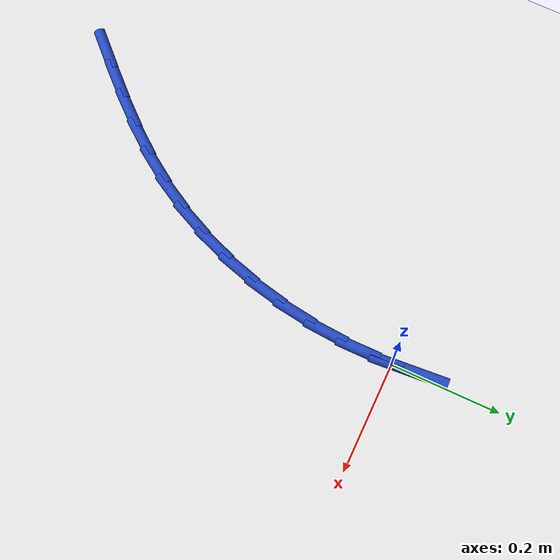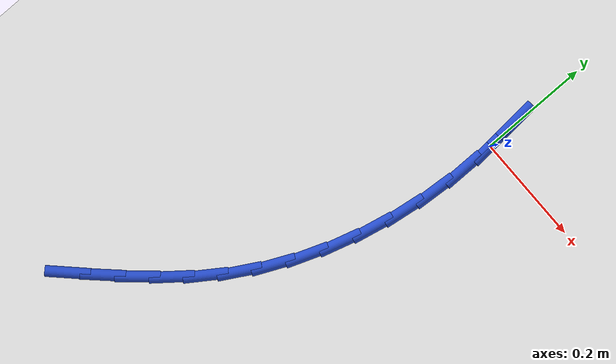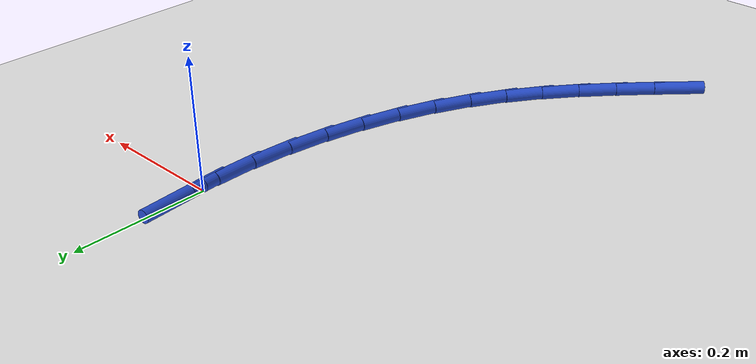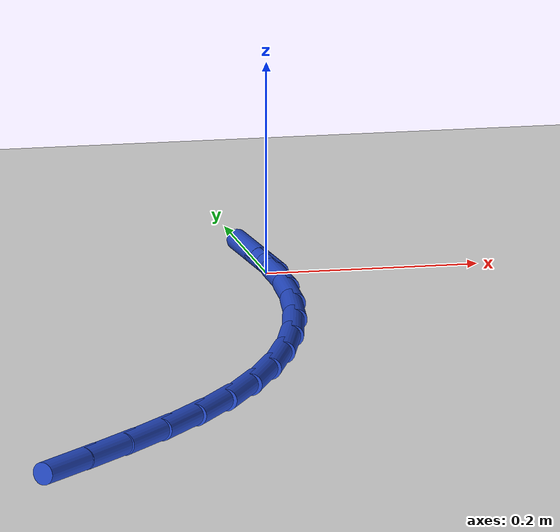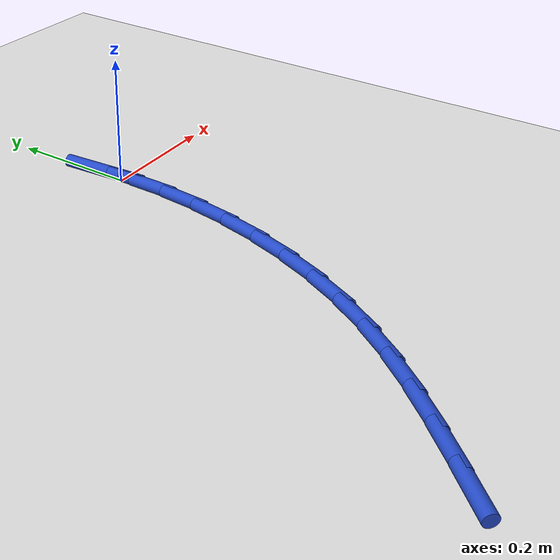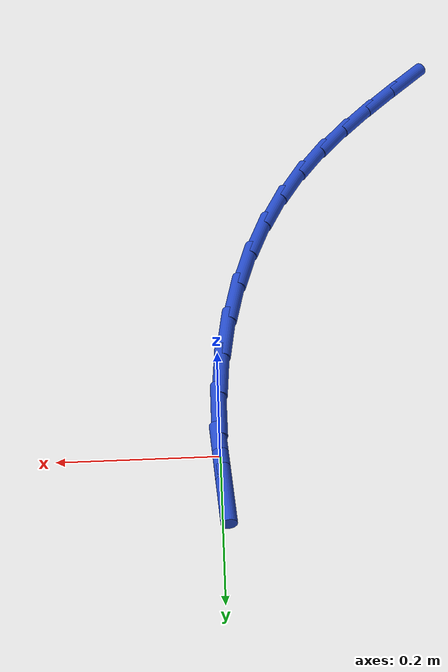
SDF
<sdf version="1.6">
 <world name="default">
  <model name="ground_plane">
   <static>1</static>
   <link name="link">
    <collision name="collision">
     <geometry><plane><normal>0 0 1</normal><size>100 100</size></plane></geometry>
     <surface><friction><ode><mu>100</mu><mu2>50</mu2></ode></friction></surface>
    </collision>
    <visual name="visual">
     <cast_shadows>0</cast_shadows>
     <geometry><plane><normal>0 0 1</normal><size>100 100</size></plane></geometry>
     <material>
      <script><uri>file://media/materials/scripts/gazebo.material</uri><name>Gazebo/WhiteGlow</name></script>
     </material>
    </visual>
   </link>
  </model>
  <model name="line">
   <link name="link_0">
    <pose>-2.0816681711721685e-17 -6.938893903907228e-17 0.01 0 1.57 -1.4980942625534617</pose>
    <collision name="collision">
     <geometry><cylinder><radius>0.01</radius><length>0.08</length></cylinder></geometry>
    </collision>
    <visual name="visual">
     <material>
      <script><name>Gazebo/Blue</name><uri>file://media/materials/scripts/gazebo.material</uri></script>
     </material>
     <geometry><cylinder><radius>0.01</radius><length>0.08</length></cylinder></geometry>
    </visual>
   </link>
   <link name="link_117">
    <pose>-0.31306537928344974 -0.7002621055880182 0.01 0 1.57 0.7923701528504938</pose>
    <collision name="collision">
     <geometry><cylinder><radius>0.01</radius><length>0.08</length></cylinder></geometry>
    </collision>
    <visual name="visual">
     <material>
      <script><name>Gazebo/Blue</name><uri>file://media/materials/scripts/gazebo.material</uri></script>
     </material>
     <geometry><cylinder><radius>0.01</radius><length>0.08</length></cylinder></geometry>
    </visual>
   </link>
   <link name="link_118">
    <pose>-0.270023744569497 -0.6566160755970584 0.01 0 1.57 0.8124459100381214</pose>
    <collision name="collision">
     <geometry><cylinder><radius>0.01</radius><length>0.08</length></cylinder></geometry>
    </collision>
    <visual name="visual">
     <material>
      <script><name>Gazebo/Blue</name><uri>file://media/materials/scripts/gazebo.material</uri></script>
     </material>
     <geometry><cylinder><radius>0.01</radius><length>0.08</length></cylinder></geometry>
    </visual>
   </link>
   <link name="link_119">
    <pose>-0.22859808628022263 -0.6128866010121463 0.01 0 1.57 0.8494992442936784</pose>
    <collision name="collision">
     <geometry><cylinder><radius>0.01</radius><length>0.08</length></cylinder></geometry>
    </collision>
    <visual name="visual">
     <material>
      <script><name>Gazebo/Blue</name><uri>file://media/materials/scripts/gazebo.material</uri></script>
     </material>
     <geometry><cylinder><radius>0.01</radius><length>0.08</length></cylinder></geometry>
    </visual>
   </link>
   <link name="link_120">
    <pose>-0.18934467012504438 -0.5682482547174895 0.01 0 1.57 0.9036380978594104</pose>
    <collision name="collision">
     <geometry><cylinder><radius>0.01</radius><length>0.08</length></cylinder></geometry>
    </collision>
    <visual name="visual">
     <material>
      <script><name>Gazebo/Blue</name><uri>file://media/materials/scripts/gazebo.material</uri></script>
     </material>
     <geometry><cylinder><radius>0.01</radius><length>0.08</length></cylinder></geometry>
    </visual>
   </link>
   <link name="link_121">
    <pose>-0.15281976181338125 -0.5218756095972973 0.01 0 1.57 0.9740932445285094</pose>
    <collision name="collision">
     <geometry><cylinder><radius>0.01</radius><length>0.08</length></cylinder></geometry>
    </collision>
    <visual name="visual">
     <material>
      <script><name>Gazebo/Blue</name><uri>file://media/materials/scripts/gazebo.material</uri></script>
     </material>
     <geometry><cylinder><radius>0.01</radius><length>0.08</length></cylinder></geometry>
    </visual>
   </link>
   <link name="link_122">
    <pose>-0.11957962705465199 -0.4729432385357781 0.01 0 1.57 1.0570512740801612</pose>
    <collision name="collision">
     <geometry><cylinder><radius>0.01</radius><length>0.08</length></cylinder></geometry>
    </collision>
    <visual name="visual">
     <material>
      <script><name>Gazebo/Blue</name><uri>file://media/materials/scripts/gazebo.material</uri></script>
     </material>
     <geometry><cylinder><radius>0.01</radius><length>0.08</length></cylinder></geometry>
    </visual>
   </link>
   <link name="link_123">
    <pose>-0.0901332698231861 -0.42075983535057354 0.01 0 1.57 1.1390695516493303</pose>
    <collision name="collision">
     <geometry><cylinder><radius>0.01</radius><length>0.08</length></cylinder></geometry>
    </collision>
    <visual name="visual">
     <material>
      <script><name>Gazebo/Blue</name><uri>file://media/materials/scripts/gazebo.material</uri></script>
     </material>
     <geometry><cylinder><radius>0.01</radius><length>0.08</length></cylinder></geometry>
    </visual>
   </link>
   <link name="link_124">
    <pose>-0.0646801440875813 -0.3655125452245882 0.01 0 1.57 1.2162649696594523</pose>
    <collision name="collision">
     <geometry><cylinder><radius>0.01</radius><length>0.08</length></cylinder></geometry>
    </collision>
    <visual name="visual">
     <material>
      <script><name>Gazebo/Blue</name><uri>file://media/materials/scripts/gazebo.material</uri></script>
     </material>
     <geometry><cylinder><radius>0.01</radius><length>0.08</length></cylinder></geometry>
    </visual>
   </link>
   <link name="link_125">
    <pose>-0.04329511912302988 -0.30774206395285303 0.01 0 1.57 1.289862206811245</pose>
    <collision name="collision">
     <geometry><cylinder><radius>0.01</radius><length>0.08</length></cylinder></geometry>
    </collision>
    <visual name="visual">
     <material>
      <script><name>Gazebo/Blue</name><uri>file://media/materials/scripts/gazebo.material</uri></script>
     </material>
     <geometry><cylinder><radius>0.01</radius><length>0.08</length></cylinder></geometry>
    </visual>
   </link>
   <link name="link_126">
    <pose>-0.026052723333358098 -0.24799005466656907 0.01 0 1.57 1.3610675154662417</pose>
    <collision name="collision">
     <geometry><cylinder><radius>0.01</radius><length>0.08</length></cylinder></geometry>
    </collision>
    <visual name="visual">
     <material>
      <script><name>Gazebo/Blue</name><uri>file://media/materials/scripts/gazebo.material</uri></script>
     </material>
     <geometry><cylinder><radius>0.01</radius><length>0.08</length></cylinder></geometry>
    </visual>
   </link>
   <link name="link_127">
    <pose>-0.013027485122392922 -0.18679818049694027 0.01 0 1.57 1.431053729170844</pose>
    <collision name="collision">
     <geometry><cylinder><radius>0.01</radius><length>0.08</length></cylinder></geometry>
    </collision>
    <visual name="visual">
     <material>
      <script><name>Gazebo/Blue</name><uri>file://media/materials/scripts/gazebo.material</uri></script>
     </material>
     <geometry><cylinder><radius>0.01</radius><length>0.08</length></cylinder></geometry>
    </visual>
   </link>
   <link name="link_128">
    <pose>-0.004293932893960538 -0.12470810457516784 0.01 0 1.57 1.5009728754436438</pose>
    <collision name="collision">
     <geometry><cylinder><radius>0.01</radius><length>0.08</length></cylinder></geometry>
    </collision>
    <visual name="visual">
     <material>
      <script><name>Gazebo/Blue</name><uri>file://media/materials/scripts/gazebo.material</uri></script>
     </material>
     <geometry><cylinder><radius>0.01</radius><length>0.08</length></cylinder></geometry>
    </visual>
   </link>
   <link name="link_129">
    <pose>7.340494811257717e-05 -0.06226149003245389 0.01 0 1.57 -1.569617349001984</pose>
    <collision name="collision">
     <geometry><cylinder><radius>0.01</radius><length>0.08</length></cylinder></geometry>
    </collision>
    <visual name="visual">
     <material>
      <script><name>Gazebo/Blue</name><uri>file://media/materials/scripts/gazebo.material</uri></script>
     </material>
     <geometry><cylinder><radius>0.01</radius><length>0.08</length></cylinder></geometry>
    </visual>
   </link>
   <link name="link_130">
    <pose>-2.42861286636753e-17 -3.191891195797325e-16 0.01 0 1.57 -1.4963635480142776</pose>
    <collision name="collision">
     <geometry><cylinder><radius>0.01</radius><length>0.08</length></cylinder></geometry>
    </collision>
    <visual name="visual">
     <material>
      <script><name>Gazebo/Blue</name><uri>file://media/materials/scripts/gazebo.material</uri></script>
     </material>
     <geometry><cylinder><radius>0.01</radius><length>0.08</length></cylinder></geometry>
    </visual>
   </link>
   <link name="link_131">
    <pose>-0.004588676142124833 0.061534702390990716 0.01 0 1.57 -1.4963635480142772</pose>
    <collision name="collision">
     <geometry><cylinder><radius>0.01</radius><length>0.08</length></cylinder></geometry>
    </collision>
    <visual name="visual">
     <material>
      <script><name>Gazebo/Blue</name><uri>file://media/materials/scripts/gazebo.material</uri></script>
     </material>
     <geometry><cylinder><radius>0.01</radius><length>0.08</length></cylinder></geometry>
    </visual>
   </link>
  </model>
 </world>
</sdf>
